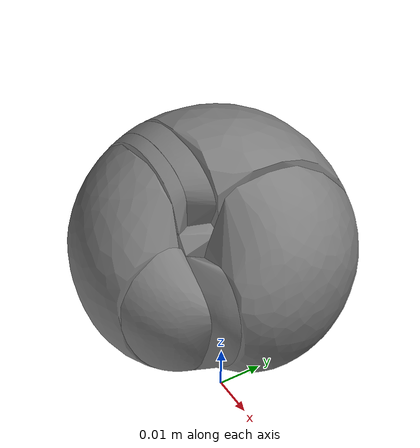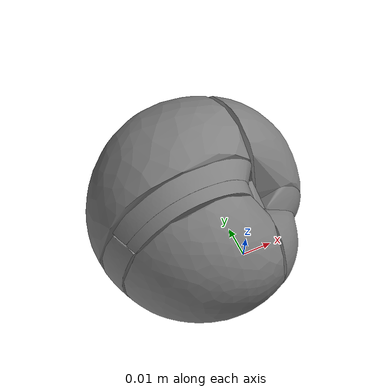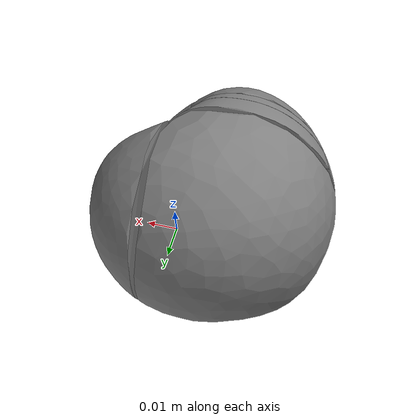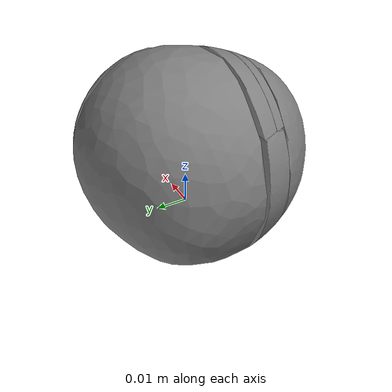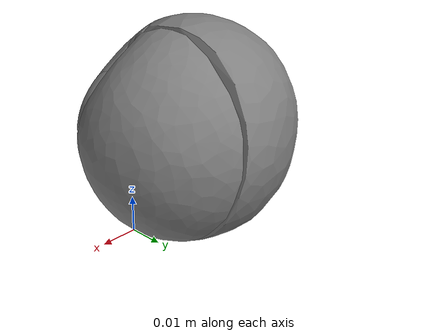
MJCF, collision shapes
<mujoco model="ycb_015_peach">
  <compiler meshdir="meshes" texturedir="meshes" angle="radian"/>
  <default>
    <default class="visual"><geom contype="0" conaffinity="0" group="2" density="0"/></default>
    <default class="collision"><geom group="3"/></default>
  </default>
  <asset>
    <texture name="ycb_015_peach_tex" type="2d" file="ycb_015_peach_texture.png"/>
    <material name="ycb_015_peach_mat" texture="ycb_015_peach_tex" specular="0.2" shininess="0.3"/>
    <mesh name="ycb_015_peach_visual" file="ycb_015_peach_visual.obj"/>
    <mesh name="ycb_015_peach_hull0" file="ycb_015_peach_hull0.obj"/>
    <mesh name="ycb_015_peach_hull1" file="ycb_015_peach_hull1.obj"/>
    <mesh name="ycb_015_peach_hull2" file="ycb_015_peach_hull2.obj"/>
    <mesh name="ycb_015_peach_hull3" file="ycb_015_peach_hull3.obj"/>
    <mesh name="ycb_015_peach_hull4" file="ycb_015_peach_hull4.obj"/>
    <mesh name="ycb_015_peach_hull5" file="ycb_015_peach_hull5.obj"/>
    <mesh name="ycb_015_peach_hull6" file="ycb_015_peach_hull6.obj"/>
    <mesh name="ycb_015_peach_hull7" file="ycb_015_peach_hull7.obj"/>
  </asset>
  <worldbody>
    <body name="object" pos="0 0 0">
      <freejoint name="object_free"/>
      <geom type="mesh" mesh="ycb_015_peach_visual" material="ycb_015_peach_mat" class="visual"/>
      <geom type="mesh" mesh="ycb_015_peach_hull0" class="collision"/>
      <geom type="mesh" mesh="ycb_015_peach_hull1" class="collision"/>
      <geom type="mesh" mesh="ycb_015_peach_hull2" class="collision"/>
      <geom type="mesh" mesh="ycb_015_peach_hull3" class="collision"/>
      <geom type="mesh" mesh="ycb_015_peach_hull4" class="collision"/>
      <geom type="mesh" mesh="ycb_015_peach_hull5" class="collision"/>
      <geom type="mesh" mesh="ycb_015_peach_hull6" class="collision"/>
      <geom type="mesh" mesh="ycb_015_peach_hull7" class="collision"/>
    </body>
  </worldbody>
</mujoco>
